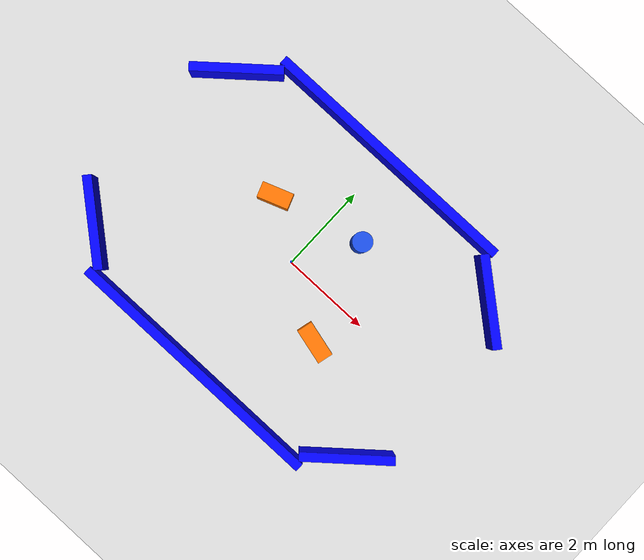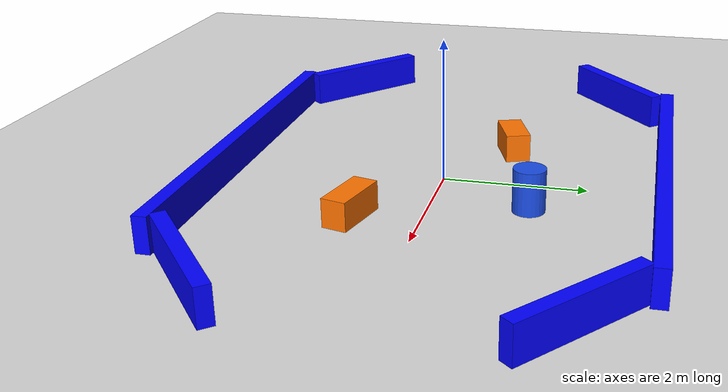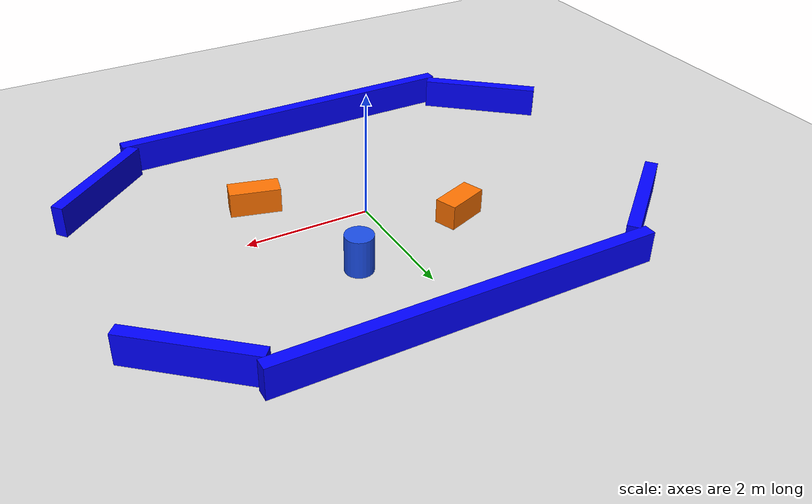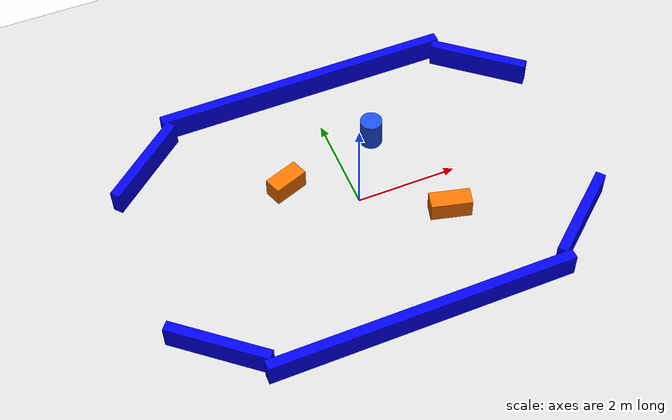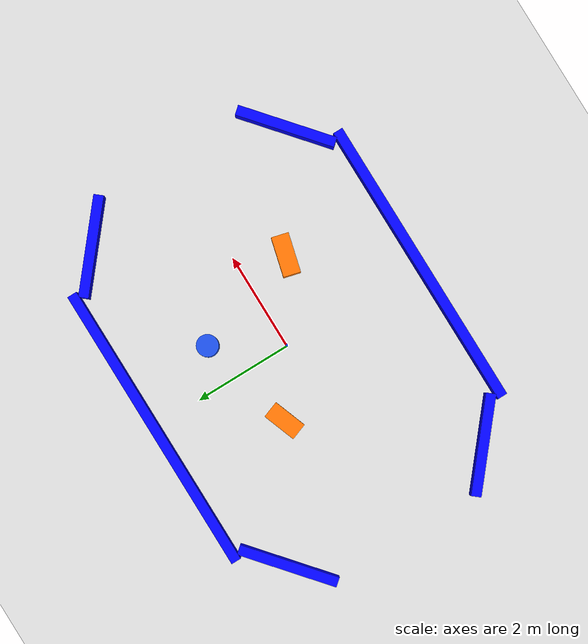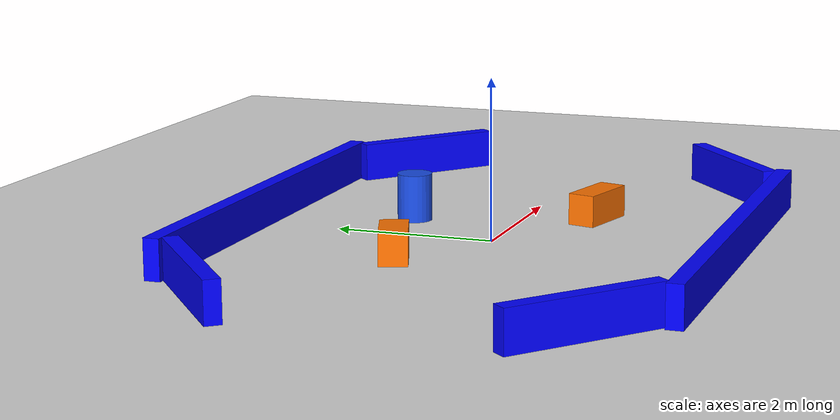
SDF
<?xml version="1.0" ?>
<sdf version="1.9">
  <world name="pioneer_world">

    <physics name="1ms" type="ignored">
      <max_step_size>0.001</max_step_size>
      <real_time_factor>1.0</real_time_factor>
    </physics>

    <plugin
      filename="gz-sim-physics-system"
      name="gz::sim::systems::Physics"/>
    <plugin
      filename="gz-sim-user-commands-system"
      name="gz::sim::systems::UserCommands"/>
    <plugin
      filename="gz-sim-scene-broadcaster-system"
      name="gz::sim::systems::SceneBroadcaster"/>
    <plugin
      filename="gz-sim-sensors-system"
      name="gz::sim::systems::Sensors">
      <render_engine>ogre2</render_engine>
    </plugin>

    <light type="directional" name="sun">
      <cast_shadows>false</cast_shadows>
      <pose>0 0 10 0 0 0</pose>
      <diffuse>0.8 0.8 0.8 1</diffuse>
      <specular>0.2 0.2 0.2 1</specular>
      <direction>-0.5 0.1 -0.9</direction>
    </light>

    <model name="ground_plane">
      <static>true</static>
      <link name="link">
        <collision name="collision">
          <geometry>
            <plane>
              <normal>0 0 1</normal>
              <size>30 30</size>
            </plane>
          </geometry>
        </collision>
        <visual name="visual">
          <geometry>
            <plane>
              <normal>0 0 1</normal>
              <size>30 30</size>
            </plane>
          </geometry>
          <material>
            <ambient>0.85 0.85 0.85 1</ambient>
            <diffuse>0.85 0.85 0.85 1</diffuse>
          </material>
        </visual>
      </link>
    </model>

    <!-- Oval-like arena boundary  -->

    <!-- top long -->
    <model name="wall_top">
      <static>true</static>
      <pose>0 3.0 0.25 0 0 0</pose>
      <link name="link">
        <collision name="collision">
          <geometry><box><size>6.0 0.2 0.5</size></box></geometry>
        </collision>
        <visual name="visual">
          <geometry><box><size>6.0 0.2 0.5</size></box></geometry>
          <material>
            <ambient>0 0 1 1</ambient>
            <diffuse>0 0 1 1</diffuse>
          </material>
        </visual>
      </link>
    </model>

    <!-- bottom long -->
    <model name="wall_bottom">
      <static>true</static>
      <pose>0 -3.0 0.25 0 0 0</pose>
      <link name="link">
        <collision name="collision">
          <geometry><box><size>6.0 0.2 0.5</size></box></geometry>
        </collision>
        <visual name="visual">
          <geometry><box><size>6.0 0.2 0.5</size></box></geometry>
          <material>
            <ambient>0 0 1 1</ambient>
            <diffuse>0 0 1 1</diffuse>
          </material>
        </visual>
      </link>
    </model>

    <!-- left upper diagonal -->
    <model name="wall_left_upper">
      <static>true</static>
      <pose>-3.6 2.2 0.25 0 0 0.70</pose>
      <link name="link">
        <collision name="collision">
          <geometry><box><size>2.0 0.2 0.5</size></box></geometry>
        </collision>
        <visual name="visual">
          <geometry><box><size>2.0 0.2 0.5</size></box></geometry>
          <material>
            <ambient>0 0 1 1</ambient>
            <diffuse>0 0 1 1</diffuse>
          </material>
        </visual>
      </link>
    </model>

    <!-- left lower diagonal -->
    <model name="wall_left_lower">
      <static>true</static>
      <pose>-3.6 -2.2 0.25 0 0 -0.70</pose>
      <link name="link">
        <collision name="collision">
          <geometry><box><size>2.0 0.2 0.5</size></box></geometry>
        </collision>
        <visual name="visual">
          <geometry><box><size>2.0 0.2 0.5</size></box></geometry>
          <material>
            <ambient>0 0 1 1</ambient>
            <diffuse>0 0 1 1</diffuse>
          </material>
        </visual>
      </link>
    </model>

    <!-- right upper diagonal -->
    <model name="wall_right_upper">
      <static>true</static>
      <pose>3.6 2.2 0.25 0 0 -0.70</pose>
      <link name="link">
        <collision name="collision">
          <geometry><box><size>2.0 0.2 0.5</size></box></geometry>
        </collision>
        <visual name="visual">
          <geometry><box><size>2.0 0.2 0.5</size></box></geometry>
          <material>
            <ambient>0 0 1 1</ambient>
            <diffuse>0 0 1 1</diffuse>
          </material>
        </visual>
      </link>
    </model>

    <!-- right lower diagonal -->
    <model name="wall_right_lower">
      <static>true</static>
      <pose>3.6 -2.2 0.25 0 0 0.70</pose>
      <link name="link">
        <collision name="collision">
          <geometry><box><size>2.0 0.2 0.5</size></box></geometry>
        </collision>
        <visual name="visual">
          <geometry><box><size>2.0 0.2 0.5</size></box></geometry>
          <material>
            <ambient>0 0 1 1</ambient>
            <diffuse>0 0 1 1</diffuse>
          </material>
        </visual>
      </link>
    </model>

    <!-- Obstacles inside arena    -->

    <!-- Roadblock 1 -->
    <model name="roadblock_1">
      <static>true</static>
      <pose>-1.2 0.8 0.20 0 0 0.35</pose>
      <link name="link">
        <collision name="collision">
          <geometry><box><size>0.7 0.35 0.4</size></box></geometry>
        </collision>
        <visual name="visual">
          <geometry><box><size>0.7 0.35 0.4</size></box></geometry>
          <material>
            <ambient>1.0 0.45 0.0 1</ambient>
            <diffuse>1.0 0.45 0.0 1</diffuse>
          </material>
        </visual>
      </link>
    </model>

    <!-- Roadblock 2 -->
    <model name="roadblock_2">
      <static>true</static>
      <pose>1.5 -0.9 0.20 0 0 -0.25</pose>
      <link name="link">
        <collision name="collision">
          <geometry><box><size>0.8 0.35 0.4</size></box></geometry>
        </collision>
        <visual name="visual">
          <geometry><box><size>0.8 0.35 0.4</size></box></geometry>
          <material>
            <ambient>1.0 0.45 0.0 1</ambient>
            <diffuse>1.0 0.45 0.0 1</diffuse>
          </material>
        </visual>
      </link>
    </model>

    <!-- Bucket / barrel -->
    <model name="bucket_1">
      <static>true</static>
      <pose>0.8 1.3 0.30 0 0 0</pose>
      <link name="link">
        <collision name="collision">
          <geometry><cylinder><radius>0.22</radius><length>0.60</length></cylinder></geometry>
        </collision>
        <visual name="visual">
          <geometry><cylinder><radius>0.22</radius><length>0.60</length></cylinder></geometry>
          <material>
            <ambient>0.1 0.3 0.9 1</ambient>
            <diffuse>0.1 0.3 0.9 1</diffuse>
          </material>
        </visual>
      </link>
    </model>

  </world>
</sdf>
